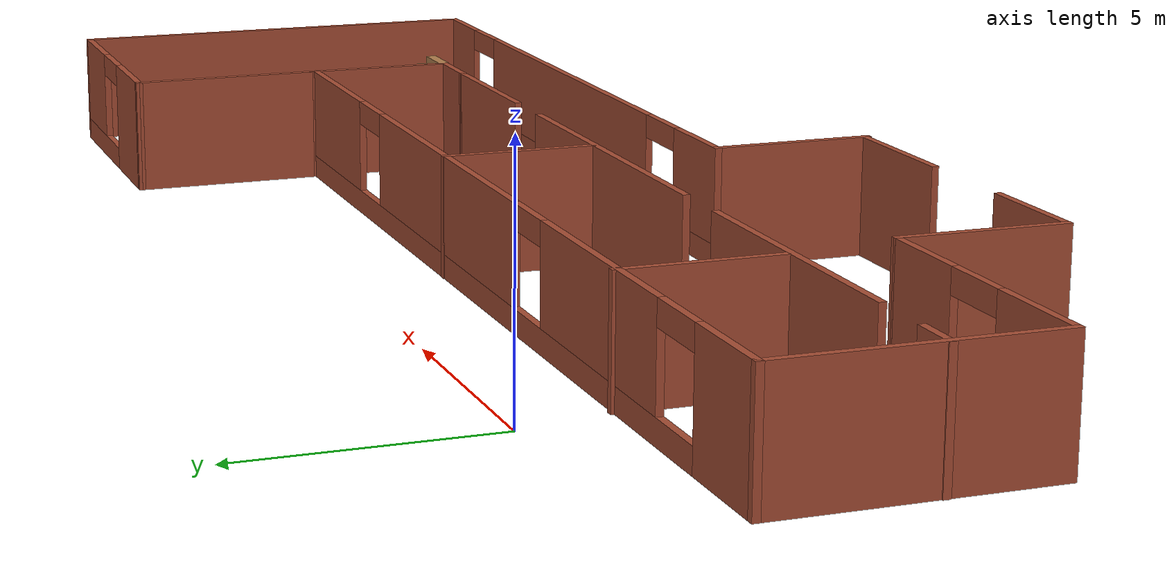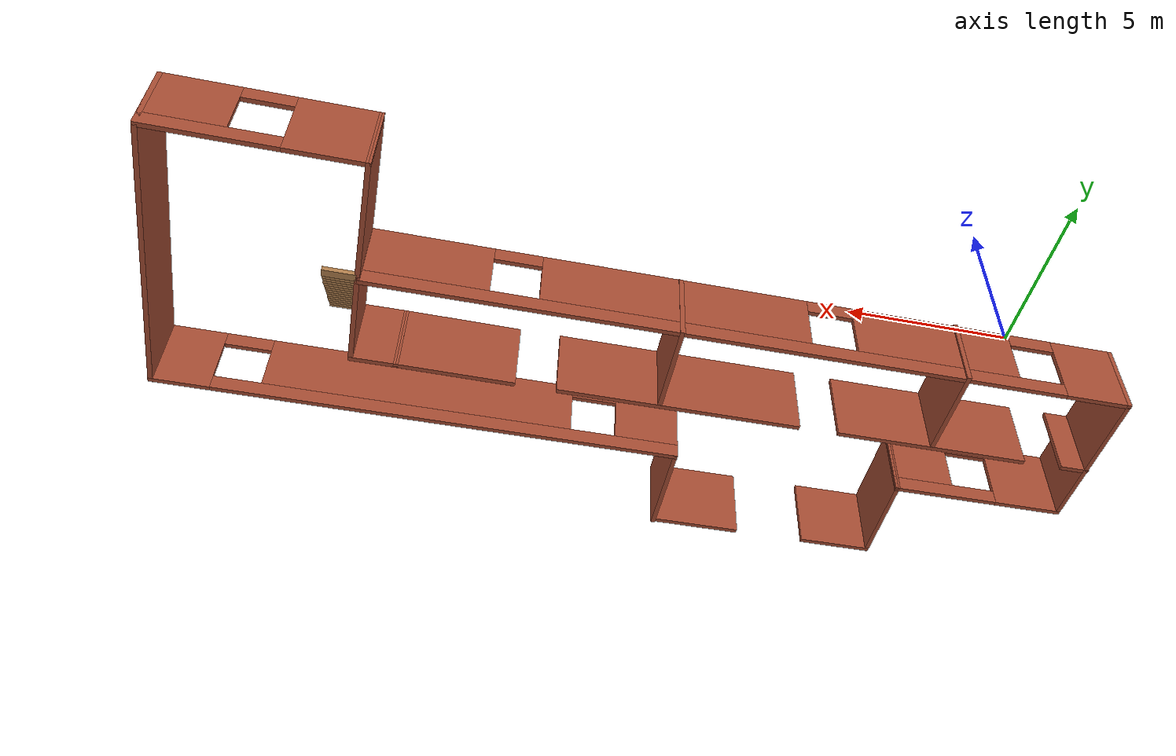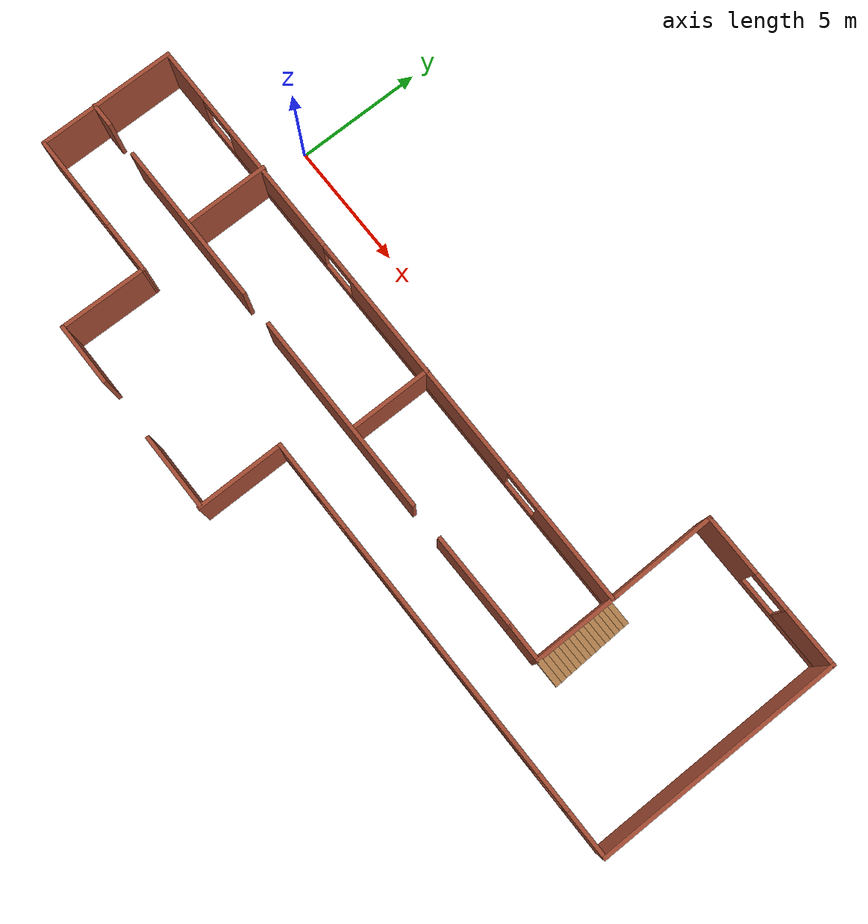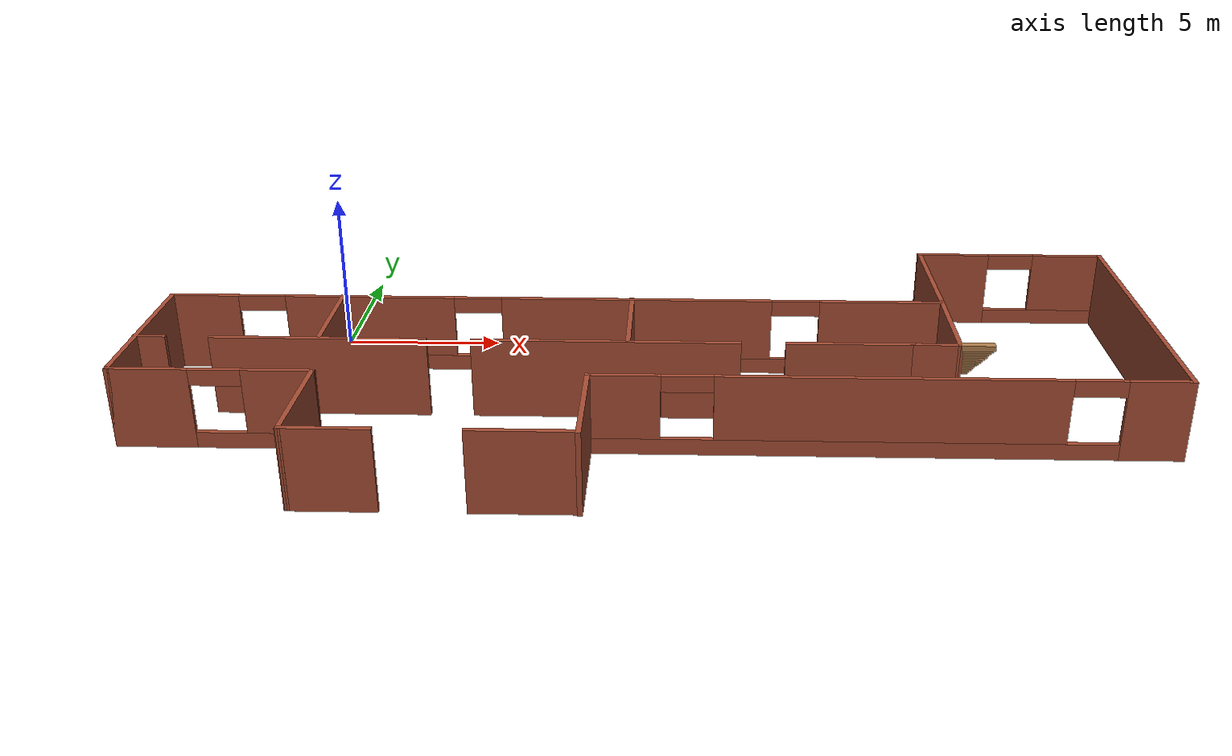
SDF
<?xml version='1.0'?>
<sdf version='1.7'>
  <model name='hospital'>
    <pose>10.1463 -4.21456 0 0 -0 0</pose>
    <include>
      <uri>model://hospital/components/stairs/</uri>
    </include>
    <link name='Wall_36'>
      <pose>-3.04399 2.26756 0 0 -0 0</pose>
      <visual name='Wall_36_Visual_0'>
        <pose>-11.1466 0 1.25 0 -0 0</pose>
        <geometry>
          <box>
            <size>2.20684 0.15 2.5</size>
          </box>
        </geometry>
        <material>
          <script>
            <uri>file://media/materials/scripts/gazebo.material</uri>
            <name>Gazebo/Bricks</name>
          </script>
          <ambient>1 1 1 1</ambient>
        </material>
        <meta>
          <layer>0</layer>
        </meta>
      </visual>
      <collision name='Wall_36_Collision_0'>
        <geometry>
          <box>
            <size>2.20684 0.15 2.5</size>
          </box>
        </geometry>
        <pose>-11.1466 0 1.25 0 -0 0</pose>
      </collision>
      <visual name='Wall_36_Visual_1'>
        <pose>1.10342 0 0.25 0 -0 0</pose>
        <geometry>
          <box>
            <size>22.2932 0.15 0.5</size>
          </box>
        </geometry>
        <material>
          <script>
            <uri>file://media/materials/scripts/gazebo.material</uri>
            <name>Gazebo/Bricks</name>
          </script>
          <ambient>1 1 1 1</ambient>
        </material>
        <meta>
          <layer>0</layer>
        </meta>
      </visual>
      <collision name='Wall_36_Collision_1'>
        <geometry>
          <box>
            <size>22.2932 0.15 0.5</size>
          </box>
        </geometry>
        <pose>1.10342 0 0.25 0 -0 0</pose>
      </collision>
      <visual name='Wall_36_Visual_2'>
        <pose>-5.85003 0 1.5 0 -0 0</pose>
        <geometry>
          <box>
            <size>5.38627 0.15 2</size>
          </box>
        </geometry>
        <material>
          <script>
            <uri>file://media/materials/scripts/gazebo.material</uri>
            <name>Gazebo/Bricks</name>
          </script>
          <ambient>1 1 1 1</ambient>
        </material>
        <meta>
          <layer>0</layer>
        </meta>
      </visual>
      <collision name='Wall_36_Collision_2'>
        <geometry>
          <box>
            <size>5.38627 0.15 2</size>
          </box>
        </geometry>
        <pose>-5.85003 0 1.5 0 -0 0</pose>
      </collision>
      <visual name='Wall_36_Visual_3'>
        <pose>2.61743 0 1.5 0 -0 0</pose>
        <geometry>
          <box>
            <size>8.54864 0.15 2</size>
          </box>
        </geometry>
        <material>
          <script>
            <uri>file://media/materials/scripts/gazebo.material</uri>
            <name>Gazebo/Bricks</name>
          </script>
          <ambient>1 1 1 1</ambient>
        </material>
        <meta>
          <layer>0</layer>
        </meta>
      </visual>
      <collision name='Wall_36_Collision_3'>
        <geometry>
          <box>
            <size>8.54864 0.15 2</size>
          </box>
        </geometry>
        <pose>2.61743 0 1.5 0 -0 0</pose>
      </collision>
      <visual name='Wall_36_Visual_4'>
        <pose>10.3209 0 1.5 0 -0 0</pose>
        <geometry>
          <box>
            <size>3.85826 0.15 2</size>
          </box>
        </geometry>
        <material>
          <script>
            <uri>file://media/materials/scripts/gazebo.material</uri>
            <name>Gazebo/Bricks</name>
          </script>
          <ambient>1 1 1 1</ambient>
        </material>
        <meta>
          <layer>0</layer>
        </meta>
      </visual>
      <collision name='Wall_36_Collision_4'>
        <geometry>
          <box>
            <size>3.85826 0.15 2</size>
          </box>
        </geometry>
        <pose>10.3209 0 1.5 0 -0 0</pose>
      </collision>
      <visual name='Wall_36_Visual_5'>
        <pose>-9.29316 0 2.25 0 -0 0</pose>
        <geometry>
          <box>
            <size>1.5 0.15 0.5</size>
          </box>
        </geometry>
        <material>
          <script>
            <uri>file://media/materials/scripts/gazebo.material</uri>
            <name>Gazebo/Bricks</name>
          </script>
          <ambient>1 1 1 1</ambient>
        </material>
        <meta>
          <layer>0</layer>
        </meta>
      </visual>
      <collision name='Wall_36_Collision_5'>
        <geometry>
          <box>
            <size>1.5 0.15 0.5</size>
          </box>
        </geometry>
        <pose>-9.29316 0 2.25 0 -0 0</pose>
      </collision>
      <visual name='Wall_36_Visual_6'>
        <pose>-2.40689 0 2.25 0 -0 0</pose>
        <geometry>
          <box>
            <size>1.5 0.15 0.5</size>
          </box>
        </geometry>
        <material>
          <script>
            <uri>file://media/materials/scripts/gazebo.material</uri>
            <name>Gazebo/Bricks</name>
          </script>
          <ambient>1 1 1 1</ambient>
        </material>
        <meta>
          <layer>0</layer>
        </meta>
      </visual>
      <collision name='Wall_36_Collision_6'>
        <geometry>
          <box>
            <size>1.5 0.15 0.5</size>
          </box>
        </geometry>
        <pose>-2.40689 0 2.25 0 -0 0</pose>
      </collision>
      <visual name='Wall_36_Visual_7'>
        <pose>7.64175 0 2.25 0 -0 0</pose>
        <geometry>
          <box>
            <size>1.5 0.15 0.5</size>
          </box>
        </geometry>
        <material>
          <script>
            <uri>file://media/materials/scripts/gazebo.material</uri>
            <name>Gazebo/Bricks</name>
          </script>
          <ambient>1 1 1 1</ambient>
        </material>
        <meta>
          <layer>0</layer>
        </meta>
      </visual>
      <collision name='Wall_36_Collision_7'>
        <geometry>
          <box>
            <size>1.5 0.15 0.5</size>
          </box>
        </geometry>
        <pose>7.64175 0 2.25 0 -0 0</pose>
      </collision>
    </link>
    <link name='Wall_38'>
      <pose>12.1937 6.47456 0 0 -0 0</pose>
      <visual name='Wall_38_Visual_0'>
        <pose>-1.9229 0 1.25 0 -0 0</pose>
        <geometry>
          <box>
            <size>2.4042 0.15 2.5</size>
          </box>
        </geometry>
        <material>
          <script>
            <uri>file://media/materials/scripts/gazebo.material</uri>
            <name>Gazebo/Bricks</name>
          </script>
          <ambient>1 1 1 1</ambient>
        </material>
        <meta>
          <layer>0</layer>
        </meta>
      </visual>
      <collision name='Wall_38_Collision_0'>
        <geometry>
          <box>
            <size>2.4042 0.15 2.5</size>
          </box>
        </geometry>
        <pose>-1.9229 0 1.25 0 -0 0</pose>
      </collision>
      <visual name='Wall_38_Visual_1'>
        <pose>1.2021 0 0.25 0 -0 0</pose>
        <geometry>
          <box>
            <size>3.8458 0.15 0.5</size>
          </box>
        </geometry>
        <material>
          <script>
            <uri>file://media/materials/scripts/gazebo.material</uri>
            <name>Gazebo/Bricks</name>
          </script>
          <ambient>1 1 1 1</ambient>
        </material>
        <meta>
          <layer>0</layer>
        </meta>
      </visual>
      <collision name='Wall_38_Collision_1'>
        <geometry>
          <box>
            <size>3.8458 0.15 0.5</size>
          </box>
        </geometry>
        <pose>1.2021 0 0.25 0 -0 0</pose>
      </collision>
      <visual name='Wall_38_Visual_2'>
        <pose>1.9521 0 1.5 0 -0 0</pose>
        <geometry>
          <box>
            <size>2.3458 0.15 2</size>
          </box>
        </geometry>
        <material>
          <script>
            <uri>file://media/materials/scripts/gazebo.material</uri>
            <name>Gazebo/Bricks</name>
          </script>
          <ambient>1 1 1 1</ambient>
        </material>
        <meta>
          <layer>0</layer>
        </meta>
      </visual>
      <collision name='Wall_38_Collision_2'>
        <geometry>
          <box>
            <size>2.3458 0.15 2</size>
          </box>
        </geometry>
        <pose>1.9521 0 1.5 0 -0 0</pose>
      </collision>
      <visual name='Wall_38_Visual_3'>
        <pose>0.029203 0 2.25 0 -0 0</pose>
        <geometry>
          <box>
            <size>1.5 0.15 0.5</size>
          </box>
        </geometry>
        <material>
          <script>
            <uri>file://media/materials/scripts/gazebo.material</uri>
            <name>Gazebo/Bricks</name>
          </script>
          <ambient>1 1 1 1</ambient>
        </material>
        <meta>
          <layer>0</layer>
        </meta>
      </visual>
      <collision name='Wall_38_Collision_3'>
        <geometry>
          <box>
            <size>1.5 0.15 0.5</size>
          </box>
        </geometry>
        <pose>0.029203 0 2.25 0 -0 0</pose>
      </collision>
    </link>
    <link name='Wall_39'>
      <collision name='Wall_39_Collision'>
        <geometry>
          <box>
            <size>9.75 0.15 2.5</size>
          </box>
        </geometry>
        <pose>0 0 1.25 0 -0 0</pose>
      </collision>
      <visual name='Wall_39_Visual'>
        <pose>0 0 1.25 0 -0 0</pose>
        <geometry>
          <box>
            <size>9.75 0.15 2.5</size>
          </box>
        </geometry>
        <material>
          <script>
            <uri>file://media/materials/scripts/gazebo.material</uri>
            <name>Gazebo/Bricks</name>
          </script>
          <ambient>1 1 1 1</ambient>
        </material>
        <meta>
          <layer>0</layer>
        </meta>
      </visual>
      <pose>15.2437 1.67456 0 0 -0 -1.5708</pose>
    </link>
    <link name='Wall_40'>
      <pose>6.81869 -3.12544 0 0 -0 3.14159</pose>
      <visual name='Wall_40_Visual_0'>
        <pose>-7.56354 0 1.25 0 -0 0</pose>
        <geometry>
          <box>
            <size>1.87292 0.15 2.5</size>
          </box>
        </geometry>
        <material>
          <script>
            <uri>file://media/materials/scripts/gazebo.material</uri>
            <name>Gazebo/Bricks</name>
          </script>
          <ambient>1 1 1 1</ambient>
        </material>
        <meta>
          <layer>0</layer>
        </meta>
      </visual>
      <collision name='Wall_40_Collision_0'>
        <geometry>
          <box>
            <size>1.87292 0.15 2.5</size>
          </box>
        </geometry>
        <pose>-7.56354 0 1.25 0 -0 0</pose>
      </collision>
      <visual name='Wall_40_Visual_1'>
        <pose>0.93646 0 0.25 0 -0 0</pose>
        <geometry>
          <box>
            <size>15.1271 0.15 0.5</size>
          </box>
        </geometry>
        <material>
          <script>
            <uri>file://media/materials/scripts/gazebo.material</uri>
            <name>Gazebo/Bricks</name>
          </script>
          <ambient>1 1 1 1</ambient>
        </material>
        <meta>
          <layer>0</layer>
        </meta>
      </visual>
      <collision name='Wall_40_Collision_1'>
        <geometry>
          <box>
            <size>15.1271 0.15 0.5</size>
          </box>
        </geometry>
        <pose>0.93646 0 0.25 0 -0 0</pose>
      </collision>
      <visual name='Wall_40_Visual_2'>
        <pose>-0.12867 0 1.5 0 -0 0</pose>
        <geometry>
          <box>
            <size>9.99682 0.15 2</size>
          </box>
        </geometry>
        <material>
          <script>
            <uri>file://media/materials/scripts/gazebo.material</uri>
            <name>Gazebo/Bricks</name>
          </script>
          <ambient>1 1 1 1</ambient>
        </material>
        <meta>
          <layer>0</layer>
        </meta>
      </visual>
      <collision name='Wall_40_Collision_2'>
        <geometry>
          <box>
            <size>9.99682 0.15 2</size>
          </box>
        </geometry>
        <pose>-0.12867 0 1.5 0 -0 0</pose>
      </collision>
      <visual name='Wall_40_Visual_3'>
        <pose>7.43487 0 1.5 0 -0 0</pose>
        <geometry>
          <box>
            <size>2.13026 0.15 2</size>
          </box>
        </geometry>
        <material>
          <script>
            <uri>file://media/materials/scripts/gazebo.material</uri>
            <name>Gazebo/Bricks</name>
          </script>
          <ambient>1 1 1 1</ambient>
        </material>
        <meta>
          <layer>0</layer>
        </meta>
      </visual>
      <collision name='Wall_40_Collision_3'>
        <geometry>
          <box>
            <size>2.13026 0.15 2</size>
          </box>
        </geometry>
        <pose>7.43487 0 1.5 0 -0 0</pose>
      </collision>
      <visual name='Wall_40_Visual_4'>
        <pose>-5.87708 0 2.25 0 -0 0</pose>
        <geometry>
          <box>
            <size>1.5 0.15 0.5</size>
          </box>
        </geometry>
        <material>
          <script>
            <uri>file://media/materials/scripts/gazebo.material</uri>
            <name>Gazebo/Bricks</name>
          </script>
          <ambient>1 1 1 1</ambient>
        </material>
        <meta>
          <layer>0</layer>
        </meta>
      </visual>
      <collision name='Wall_40_Collision_4'>
        <geometry>
          <box>
            <size>1.5 0.15 0.5</size>
          </box>
        </geometry>
        <pose>-5.87708 0 2.25 0 -0 0</pose>
      </collision>
      <visual name='Wall_40_Visual_5'>
        <pose>5.61974 0 2.25 0 -0 0</pose>
        <geometry>
          <box>
            <size>1.5 0.15 0.5</size>
          </box>
        </geometry>
        <material>
          <script>
            <uri>file://media/materials/scripts/gazebo.material</uri>
            <name>Gazebo/Bricks</name>
          </script>
          <ambient>1 1 1 1</ambient>
        </material>
        <meta>
          <layer>0</layer>
        </meta>
      </visual>
      <collision name='Wall_40_Collision_5'>
        <geometry>
          <box>
            <size>1.5 0.15 0.5</size>
          </box>
        </geometry>
        <pose>5.61974 0 2.25 0 -0 0</pose>
      </collision>
    </link>
    <link name='Wall_42'>
      <collision name='Wall_42_Collision'>
        <geometry>
          <box>
            <size>4.23928 0.15 2.5</size>
          </box>
        </geometry>
        <pose>0 0 1.25 0 -0 0</pose>
      </collision>
      <visual name='Wall_42_Visual'>
        <pose>0 0 1.25 0 -0 0</pose>
        <geometry>
          <box>
            <size>4.23928 0.15 2.5</size>
          </box>
        </geometry>
        <material>
          <script>
            <uri>file://media/materials/scripts/gazebo.material</uri>
            <name>Gazebo/Bricks</name>
          </script>
          <ambient>1 1 1 1</ambient>
        </material>
        <meta>
          <layer>0</layer>
        </meta>
      </visual>
      <pose>9.16806 4.43006 0 0 -0 -1.55888</pose>
    </link>
    <link name='Wall_44'>
      <collision name='Wall_44_Collision'>
        <geometry>
          <box>
            <size>5.5 0.15 2.5</size>
          </box>
        </geometry>
        <pose>0 0 1.25 0 -0 0</pose>
      </collision>
      <visual name='Wall_44_Visual'>
        <pose>0 0 1.25 0 -0 0</pose>
        <geometry>
          <box>
            <size>5.5 0.15 2.5</size>
          </box>
        </geometry>
        <material>
          <script>
            <uri>file://media/materials/scripts/gazebo.material</uri>
            <name>Gazebo/Bricks</name>
          </script>
          <ambient>1 1 1 1</ambient>
        </material>
        <meta>
          <layer>0</layer>
        </meta>
      </visual>
      <pose>-15.219 -0.407439 0 0 -0 -1.5708</pose>
    </link>
    <link name='Wall_45'>
      <pose>-12.294 -3.08244 0 0 -0 0</pose>
      <visual name='Wall_45_Visual_0'>
        <pose>-1.80792 0 1.25 0 -0 0</pose>
        <geometry>
          <box>
            <size>2.38417 0.15 2.5</size>
          </box>
        </geometry>
        <material>
          <script>
            <uri>file://media/materials/scripts/gazebo.material</uri>
            <name>Gazebo/Bricks</name>
          </script>
          <ambient>1 1 1 1</ambient>
        </material>
        <meta>
          <layer>0</layer>
        </meta>
      </visual>
      <collision name='Wall_45_Collision_0'>
        <geometry>
          <box>
            <size>2.38417 0.15 2.5</size>
          </box>
        </geometry>
        <pose>-1.80792 0 1.25 0 -0 0</pose>
      </collision>
      <visual name='Wall_45_Visual_1'>
        <pose>1.19208 0 0.25 0 -0 0</pose>
        <geometry>
          <box>
            <size>3.61583 0.15 0.5</size>
          </box>
        </geometry>
        <material>
          <script>
            <uri>file://media/materials/scripts/gazebo.material</uri>
            <name>Gazebo/Bricks</name>
          </script>
          <ambient>1 1 1 1</ambient>
        </material>
        <meta>
          <layer>0</layer>
        </meta>
      </visual>
      <collision name='Wall_45_Collision_1'>
        <geometry>
          <box>
            <size>3.61583 0.15 0.5</size>
          </box>
        </geometry>
        <pose>1.19208 0 0.25 0 -0 0</pose>
      </collision>
      <visual name='Wall_45_Visual_2'>
        <pose>1.94208 0 1.5 0 -0 0</pose>
        <geometry>
          <box>
            <size>2.11583 0.15 2</size>
          </box>
        </geometry>
        <material>
          <script>
            <uri>file://media/materials/scripts/gazebo.material</uri>
            <name>Gazebo/Bricks</name>
          </script>
          <ambient>1 1 1 1</ambient>
        </material>
        <meta>
          <layer>0</layer>
        </meta>
      </visual>
      <collision name='Wall_45_Collision_2'>
        <geometry>
          <box>
            <size>2.11583 0.15 2</size>
          </box>
        </geometry>
        <pose>1.94208 0 1.5 0 -0 0</pose>
      </collision>
      <visual name='Wall_45_Visual_3'>
        <pose>0.134167 0 2.25 0 -0 0</pose>
        <geometry>
          <box>
            <size>1.5 0.15 0.5</size>
          </box>
        </geometry>
        <material>
          <script>
            <uri>file://media/materials/scripts/gazebo.material</uri>
            <name>Gazebo/Bricks</name>
          </script>
          <ambient>1 1 1 1</ambient>
        </material>
        <meta>
          <layer>0</layer>
        </meta>
      </visual>
      <collision name='Wall_45_Collision_3'>
        <geometry>
          <box>
            <size>1.5 0.15 0.5</size>
          </box>
        </geometry>
        <pose>0.134167 0 2.25 0 -0 0</pose>
      </collision>
    </link>
    <link name='Wall_46'>
      <collision name='Wall_46_Collision'>
        <geometry>
          <box>
            <size>3.5 0.15 2.5</size>
          </box>
        </geometry>
        <pose>0 0 1.25 0 -0 0</pose>
      </collision>
      <visual name='Wall_46_Visual'>
        <pose>0 0 1.25 0 -0 0</pose>
        <geometry>
          <box>
            <size>3.5 0.15 2.5</size>
          </box>
        </geometry>
        <material>
          <script>
            <uri>file://media/materials/scripts/gazebo.material</uri>
            <name>Gazebo/Bricks</name>
          </script>
          <ambient>1 1 1 1</ambient>
        </material>
        <meta>
          <layer>0</layer>
        </meta>
      </visual>
      <pose>-9.38918 -4.75744 0 0 -0 -1.58285</pose>
    </link>
    <link name='Wall_47'>
      <collision name='Wall_47_Collision'>
        <geometry>
          <box>
            <size>2.5 0.15 2.5</size>
          </box>
        </geometry>
        <pose>0 0 1.25 0 -0 0</pose>
      </collision>
      <visual name='Wall_47_Visual'>
        <pose>0 0 1.25 0 -0 0</pose>
        <geometry>
          <box>
            <size>2.5 0.15 2.5</size>
          </box>
        </geometry>
        <material>
          <script>
            <uri>file://media/materials/scripts/gazebo.material</uri>
            <name>Gazebo/Bricks</name>
          </script>
          <ambient>1 1 1 1</ambient>
        </material>
        <meta>
          <layer>0</layer>
        </meta>
      </visual>
      <pose>-8.21418 -6.43244 0 0 -0 0</pose>
    </link>
    <link name='Wall_49'>
      <collision name='Wall_49_Collision'>
        <geometry>
          <box>
            <size>3.5 0.15 2.5</size>
          </box>
        </geometry>
        <pose>0 0 1.25 0 -0 0</pose>
      </collision>
      <visual name='Wall_49_Visual'>
        <pose>0 0 1.25 0 -0 0</pose>
        <geometry>
          <box>
            <size>3.5 0.15 2.5</size>
          </box>
        </geometry>
        <material>
          <script>
            <uri>file://media/materials/scripts/gazebo.material</uri>
            <name>Gazebo/Bricks</name>
          </script>
          <ambient>1 1 1 1</ambient>
        </material>
        <meta>
          <layer>0</layer>
        </meta>
      </visual>
      <pose>-1.60631 -4.80044 0 0 -0 -1.5708</pose>
    </link>
    <link name='Wall_52'>
      <collision name='Wall_52_Collision'>
        <geometry>
          <box>
            <size>1 0.15 2.5</size>
          </box>
        </geometry>
        <pose>0 0 1.25 0 -0 0</pose>
      </collision>
      <visual name='Wall_52_Visual'>
        <pose>0 0 1.25 0 -0 0</pose>
        <geometry>
          <box>
            <size>1 0.15 2.5</size>
          </box>
        </geometry>
        <material>
          <script>
            <uri>file://media/materials/scripts/gazebo.material</uri>
            <name>Gazebo/Bricks</name>
          </script>
          <ambient>1 1 1 1</ambient>
        </material>
        <meta>
          <layer>0</layer>
        </meta>
      </visual>
      <pose>-14.8187 -0.886547 0 0 -0 0</pose>
    </link>
    <link name='Wall_54'>
      <collision name='Wall_54_Collision'>
        <geometry>
          <box>
            <size>6.5 0.15 2.5</size>
          </box>
        </geometry>
        <pose>0 0 1.25 0 -0 0</pose>
      </collision>
      <visual name='Wall_54_Visual'>
        <pose>0 0 1.25 0 -0 0</pose>
        <geometry>
          <box>
            <size>6.5 0.15 2.5</size>
          </box>
        </geometry>
        <material>
          <script>
            <uri>file://media/materials/scripts/gazebo.material</uri>
            <name>Gazebo/Bricks</name>
          </script>
          <ambient>1 1 1 1</ambient>
        </material>
        <meta>
          <layer>0</layer>
        </meta>
      </visual>
      <pose>-9.77166 -0.901327 0 0 -0 0</pose>
    </link>
    <link name='Wall_56'>
      <collision name='Wall_56_Collision'>
        <geometry>
          <box>
            <size>8 0.15 2.5</size>
          </box>
        </geometry>
        <pose>0 0 1.25 0 -0 0</pose>
      </collision>
      <visual name='Wall_56_Visual'>
        <pose>0 0 1.25 0 -0 0</pose>
        <geometry>
          <box>
            <size>8 0.15 2.5</size>
          </box>
        </geometry>
        <material>
          <script>
            <uri>file://media/materials/scripts/gazebo.material</uri>
            <name>Gazebo/Bricks</name>
          </script>
          <ambient>1 1 1 1</ambient>
        </material>
        <meta>
          <layer>0</layer>
        </meta>
      </visual>
      <pose>-1.22612 -0.90196 0 0 -0 0</pose>
    </link>
    <link name='Wall_60'>
      <collision name='Wall_60_Collision'>
        <geometry>
          <box>
            <size>3.80144 0.15 2.5</size>
          </box>
        </geometry>
        <pose>0 0 1.25 0 -0 0</pose>
      </collision>
      <visual name='Wall_60_Visual'>
        <pose>0 0 1.25 0 -0 0</pose>
        <geometry>
          <box>
            <size>3.80144 0.15 2.5</size>
          </box>
        </geometry>
        <material>
          <script>
            <uri>file://media/materials/scripts/gazebo.material</uri>
            <name>Gazebo/Bricks</name>
          </script>
          <ambient>1 1 1 1</ambient>
        </material>
        <meta>
          <layer>0</layer>
        </meta>
      </visual>
      <pose>5.98173 -0.889536 0 0 -0 -3.13492</pose>
    </link>
    <link name='Wall_62'>
      <collision name='Wall_62_Collision'>
        <geometry>
          <box>
            <size>3.25 0.15 2.5</size>
          </box>
        </geometry>
        <pose>0 0 1.25 0 -0 0</pose>
      </collision>
      <visual name='Wall_62_Visual'>
        <pose>0 0 1.25 0 -0 0</pose>
        <geometry>
          <box>
            <size>3.25 0.15 2.5</size>
          </box>
        </geometry>
        <material>
          <script>
            <uri>file://media/materials/scripts/gazebo.material</uri>
            <name>Gazebo/Bricks</name>
          </script>
          <ambient>1 1 1 1</ambient>
        </material>
        <meta>
          <layer>0</layer>
        </meta>
      </visual>
      <pose>-0.560477 0.732299 0 0 -0 -1.5708</pose>
    </link>
    <link name='Wall_64'>
      <collision name='Wall_64_Collision'>
        <geometry>
          <box>
            <size>3.25 0.15 2.5</size>
          </box>
        </geometry>
        <pose>0 0 1.25 0 -0 0</pose>
      </collision>
      <visual name='Wall_64_Visual'>
        <pose>0 0 1.25 0 -0 0</pose>
        <geometry>
          <box>
            <size>3.25 0.15 2.5</size>
          </box>
        </geometry>
        <material>
          <script>
            <uri>file://media/materials/scripts/gazebo.material</uri>
            <name>Gazebo/Bricks</name>
          </script>
          <ambient>1 1 1 1</ambient>
        </material>
        <meta>
          <layer>0</layer>
        </meta>
      </visual>
      <pose>-9.75518 0.78357 0 0 -0 -1.5708</pose>
    </link>
    <link name='Wall_66'>
      <collision name='Wall_66_Collision'>
        <geometry>
          <box>
            <size>3.42 0.15 2.5</size>
          </box>
        </geometry>
        <pose>0 0 1.25 0 -0 0</pose>
      </collision>
      <visual name='Wall_66_Visual'>
        <pose>0 0 1.25 0 -0 0</pose>
        <geometry>
          <box>
            <size>3.42 0.15 2.5</size>
          </box>
        </geometry>
        <material>
          <script>
            <uri>file://media/materials/scripts/gazebo.material</uri>
            <name>Gazebo/Bricks</name>
          </script>
          <ambient>1 1 1 1</ambient>
        </material>
        <meta>
          <layer>0</layer>
        </meta>
      </visual>
      <pose>9.19242 0.750564 0 0 -0 -1.5708</pose>
    </link>
    <link name='Wall_67'>
      <collision name='Wall_67_Collision'>
        <geometry>
          <box>
            <size>1.5355 0.15 2.5</size>
          </box>
        </geometry>
        <pose>0 0 1.25 0 -0 0</pose>
      </collision>
      <visual name='Wall_67_Visual'>
        <pose>0 0 1.25 0 -0 0</pose>
        <geometry>
          <box>
            <size>1.5355 0.15 2.5</size>
          </box>
        </geometry>
        <material>
          <script>
            <uri>file://media/materials/scripts/gazebo.material</uri>
            <name>Gazebo/Bricks</name>
          </script>
          <ambient>1 1 1 1</ambient>
        </material>
        <meta>
          <layer>0</layer>
        </meta>
      </visual>
      <pose>8.49991 -0.880896 0 0 -0 3.13648</pose>
    </link>
    <link name='Wall_69'>
      <collision name='Wall_69_Collision'>
        <geometry>
          <box>
            <size>3 0.15 2.5</size>
          </box>
        </geometry>
        <pose>0 0 1.25 0 -0 0</pose>
      </collision>
      <visual name='Wall_69_Visual'>
        <pose>0 0 1.25 0 -0 0</pose>
        <geometry>
          <box>
            <size>3 0.15 2.5</size>
          </box>
        </geometry>
        <material>
          <script>
            <uri>file://media/materials/scripts/gazebo.material</uri>
            <name>Gazebo/Bricks</name>
          </script>
          <ambient>1 1 1 1</ambient>
        </material>
        <meta>
          <layer>0</layer>
        </meta>
      </visual>
      <pose>-3.0993 -6.42916 0 0 -0 0</pose>
    </link>
    <static>1</static>
  </model>
</sdf>

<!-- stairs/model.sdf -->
<sdf version="1.7">
  <model name="Stairs">
    <link name='Stairs_0'>
      <visual name='Stairs_0_Visual_0'>
        <pose>9.72126 2.40649 0.083333 0 -0 0</pose>
        <geometry>
          <box>
            <size>1 0.233333 0.166667</size>
          </box>
        </geometry>
        <material>
          <script>
            <uri>file://media/materials/scripts/gazebo.material</uri>
            <name>Gazebo/Wood</name>
          </script>
          <ambient>1 1 1 1</ambient>
        </material>
        <meta>
          <layer>0</layer>
        </meta>
      </visual>
      <collision name='Stairs_0_Collision_0'>
        <geometry>
          <box>
            <size>1 0.233333 0.166667</size>
          </box>
        </geometry>
        <pose>9.72126 2.40649 0.083333 0 -0 0</pose>
      </collision>
      <visual name='Stairs_0_Visual_1'>
        <pose>9.72126 2.17315 0.25 0 -0 0</pose>
        <geometry>
          <box>
            <size>1 0.233333 0.166667</size>
          </box>
        </geometry>
        <material>
          <script>
            <uri>file://media/materials/scripts/gazebo.material</uri>
            <name>Gazebo/Wood</name>
          </script>
          <ambient>1 1 1 1</ambient>
        </material>
        <meta>
          <layer>0</layer>
        </meta>
      </visual>
      <collision name='Stairs_0_Collision_1'>
        <geometry>
          <box>
            <size>1 0.233333 0.166667</size>
          </box>
        </geometry>
        <pose>9.72126 2.17315 0.25 0 -0 0</pose>
      </collision>
      <visual name='Stairs_0_Visual_2'>
        <pose>9.72126 1.93982 0.416667 0 -0 0</pose>
        <geometry>
          <box>
            <size>1 0.233333 0.166667</size>
          </box>
        </geometry>
        <material>
          <script>
            <uri>file://media/materials/scripts/gazebo.material</uri>
            <name>Gazebo/Wood</name>
          </script>
          <ambient>1 1 1 1</ambient>
        </material>
        <meta>
          <layer>0</layer>
        </meta>
      </visual>
      <collision name='Stairs_0_Collision_2'>
        <geometry>
          <box>
            <size>1 0.233333 0.166667</size>
          </box>
        </geometry>
        <pose>9.72126 1.93982 0.416667 0 -0 0</pose>
      </collision>
      <visual name='Stairs_0_Visual_3'>
        <pose>9.72126 1.70649 0.583333 0 -0 0</pose>
        <geometry>
          <box>
            <size>1 0.233333 0.166667</size>
          </box>
        </geometry>
        <material>
          <script>
            <uri>file://media/materials/scripts/gazebo.material</uri>
            <name>Gazebo/Wood</name>
          </script>
          <ambient>1 1 1 1</ambient>
        </material>
        <meta>
          <layer>0</layer>
        </meta>
      </visual>
      <collision name='Stairs_0_Collision_3'>
        <geometry>
          <box>
            <size>1 0.233333 0.166667</size>
          </box>
        </geometry>
        <pose>9.72126 1.70649 0.583333 0 -0 0</pose>
      </collision>
      <visual name='Stairs_0_Visual_4'>
        <pose>9.72126 1.47315 0.75 0 -0 0</pose>
        <geometry>
          <box>
            <size>1 0.233333 0.166667</size>
          </box>
        </geometry>
        <material>
          <script>
            <uri>file://media/materials/scripts/gazebo.material</uri>
            <name>Gazebo/Wood</name>
          </script>
          <ambient>1 1 1 1</ambient>
        </material>
        <meta>
          <layer>0</layer>
        </meta>
      </visual>
      <collision name='Stairs_0_Collision_4'>
        <geometry>
          <box>
            <size>1 0.233333 0.166667</size>
          </box>
        </geometry>
        <pose>9.72126 1.47315 0.75 0 -0 0</pose>
      </collision>
      <visual name='Stairs_0_Visual_5'>
        <pose>9.72126 1.23982 0.916667 0 -0 0</pose>
        <geometry>
          <box>
            <size>1 0.233333 0.166667</size>
          </box>
        </geometry>
        <material>
          <script>
            <uri>file://media/materials/scripts/gazebo.material</uri>
            <name>Gazebo/Wood</name>
          </script>
          <ambient>1 1 1 1</ambient>
        </material>
        <meta>
          <layer>0</layer>
        </meta>
      </visual>
      <collision name='Stairs_0_Collision_5'>
        <geometry>
          <box>
            <size>1 0.233333 0.166667</size>
          </box>
        </geometry>
        <pose>9.72126 1.23982 0.916667 0 -0 0</pose>
      </collision>
      <visual name='Stairs_0_Visual_6'>
        <pose>9.72126 1.00649 1.08333 0 -0 0</pose>
        <geometry>
          <box>
            <size>1 0.233333 0.166667</size>
          </box>
        </geometry>
        <material>
          <script>
            <uri>file://media/materials/scripts/gazebo.material</uri>
            <name>Gazebo/Wood</name>
          </script>
          <ambient>1 1 1 1</ambient>
        </material>
        <meta>
          <layer>0</layer>
        </meta>
      </visual>
      <collision name='Stairs_0_Collision_6'>
        <geometry>
          <box>
            <size>1 0.233333 0.166667</size>
          </box>
        </geometry>
        <pose>9.72126 1.00649 1.08333 0 -0 0</pose>
      </collision>
      <visual name='Stairs_0_Visual_7'>
        <pose>9.72126 0.773153 1.25 0 -0 0</pose>
        <geometry>
          <box>
            <size>1 0.233333 0.166667</size>
          </box>
        </geometry>
        <material>
          <script>
            <uri>file://media/materials/scripts/gazebo.material</uri>
            <name>Gazebo/Wood</name>
          </script>
          <ambient>1 1 1 1</ambient>
        </material>
        <meta>
          <layer>0</layer>
        </meta>
      </visual>
      <collision name='Stairs_0_Collision_7'>
        <geometry>
          <box>
            <size>1 0.233333 0.166667</size>
          </box>
        </geometry>
        <pose>9.72126 0.773153 1.25 0 -0 0</pose>
      </collision>
      <visual name='Stairs_0_Visual_8'>
        <pose>9.72126 0.539819 1.41667 0 -0 0</pose>
        <geometry>
          <box>
            <size>1 0.233333 0.166667</size>
          </box>
        </geometry>
        <material>
          <script>
            <uri>file://media/materials/scripts/gazebo.material</uri>
            <name>Gazebo/Wood</name>
          </script>
          <ambient>1 1 1 1</ambient>
        </material>
        <meta>
          <layer>0</layer>
        </meta>
      </visual>
      <collision name='Stairs_0_Collision_8'>
        <geometry>
          <box>
            <size>1 0.233333 0.166667</size>
          </box>
        </geometry>
        <pose>9.72126 0.539819 1.41667 0 -0 0</pose>
      </collision>
      <visual name='Stairs_0_Visual_9'>
        <pose>9.72126 0.306486 1.58333 0 -0 0</pose>
        <geometry>
          <box>
            <size>1 0.233333 0.166667</size>
          </box>
        </geometry>
        <material>
          <script>
            <uri>file://media/materials/scripts/gazebo.material</uri>
            <name>Gazebo/Wood</name>
          </script>
          <ambient>1 1 1 1</ambient>
        </material>
        <meta>
          <layer>0</layer>
        </meta>
      </visual>
      <collision name='Stairs_0_Collision_9'>
        <geometry>
          <box>
            <size>1 0.233333 0.166667</size>
          </box>
        </geometry>
        <pose>9.72126 0.306486 1.58333 0 -0 0</pose>
      </collision>
      <visual name='Stairs_0_Visual_10'>
        <pose>9.72126 0.073153 1.75 0 -0 0</pose>
        <geometry>
          <box>
            <size>1 0.233333 0.166667</size>
          </box>
        </geometry>
        <material>
          <script>
            <uri>file://media/materials/scripts/gazebo.material</uri>
            <name>Gazebo/Wood</name>
          </script>
          <ambient>1 1 1 1</ambient>
        </material>
        <meta>
          <layer>0</layer>
        </meta>
      </visual>
      <collision name='Stairs_0_Collision_10'>
        <geometry>
          <box>
            <size>1 0.233333 0.166667</size>
          </box>
        </geometry>
        <pose>9.72126 0.073153 1.75 0 -0 0</pose>
      </collision>
      <visual name='Stairs_0_Visual_11'>
        <pose>9.72126 -0.160181 1.91667 0 -0 0</pose>
        <geometry>
          <box>
            <size>1 0.233333 0.166667</size>
          </box>
        </geometry>
        <material>
          <script>
            <uri>file://media/materials/scripts/gazebo.material</uri>
            <name>Gazebo/Wood</name>
          </script>
          <ambient>1 1 1 1</ambient>
        </material>
        <meta>
          <layer>0</layer>
        </meta>
      </visual>
      <collision name='Stairs_0_Collision_11'>
        <geometry>
          <box>
            <size>1 0.233333 0.166667</size>
          </box>
        </geometry>
        <pose>9.72126 -0.160181 1.91667 0 -0 0</pose>
      </collision>
      <visual name='Stairs_0_Visual_12'>
        <pose>9.72126 -0.393514 2.08333 0 -0 0</pose>
        <geometry>
          <box>
            <size>1 0.233333 0.166667</size>
          </box>
        </geometry>
        <material>
          <script>
            <uri>file://media/materials/scripts/gazebo.material</uri>
            <name>Gazebo/Wood</name>
          </script>
          <ambient>1 1 1 1</ambient>
        </material>
        <meta>
          <layer>0</layer>
        </meta>
      </visual>
      <collision name='Stairs_0_Collision_12'>
        <geometry>
          <box>
            <size>1 0.233333 0.166667</size>
          </box>
        </geometry>
        <pose>9.72126 -0.393514 2.08333 0 -0 0</pose>
      </collision>
      <visual name='Stairs_0_Visual_13'>
        <pose>9.72126 -0.626847 2.25 0 -0 0</pose>
        <geometry>
          <box>
            <size>1 0.233333 0.166667</size>
          </box>
        </geometry>
        <material>
          <script>
            <uri>file://media/materials/scripts/gazebo.material</uri>
            <name>Gazebo/Wood</name>
          </script>
          <ambient>1 1 1 1</ambient>
        </material>
        <meta>
          <layer>0</layer>
        </meta>
      </visual>
      <collision name='Stairs_0_Collision_13'>
        <geometry>
          <box>
            <size>1 0.233333 0.166667</size>
          </box>
        </geometry>
        <pose>9.72126 -0.626847 2.25 0 -0 0</pose>
      </collision>
      <visual name='Stairs_0_Visual_14'>
        <pose>9.72126 -0.860181 2.41667 0 -0 0</pose>
        <geometry>
          <box>
            <size>1 0.233333 0.166667</size>
          </box>
        </geometry>
        <material>
          <script>
            <uri>file://media/materials/scripts/gazebo.material</uri>
            <name>Gazebo/Wood</name>
          </script>
          <ambient>1 1 1 1</ambient>
        </material>
        <meta>
          <layer>0</layer>
        </meta>
      </visual>
      <collision name='Stairs_0_Collision_14'>
        <geometry>
          <box>
            <size>1 0.233333 0.166667</size>
          </box>
        </geometry>
        <pose>9.72126 -0.860181 2.41667 0 -0 0</pose>
      </collision>
      </link>
    </model>
</sdf>
